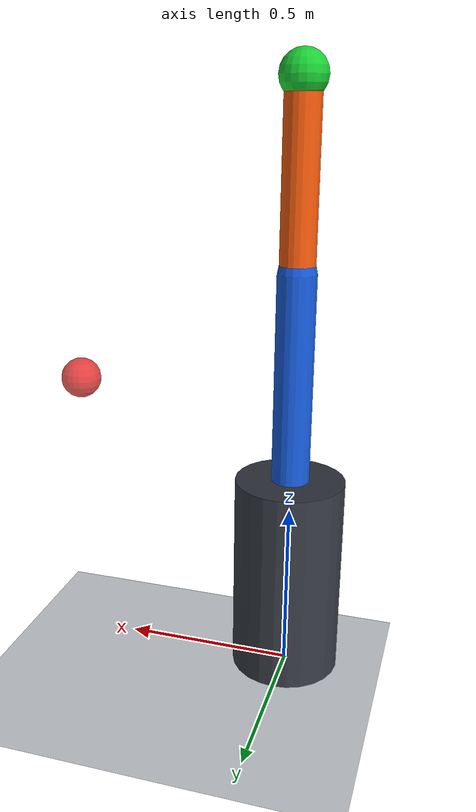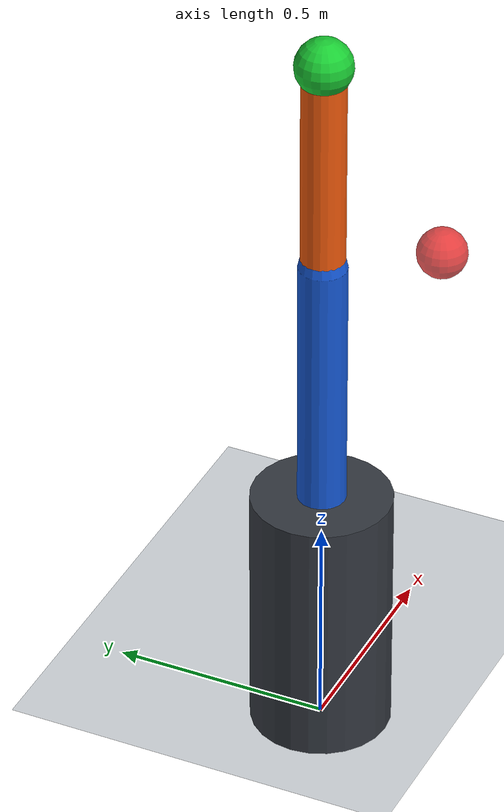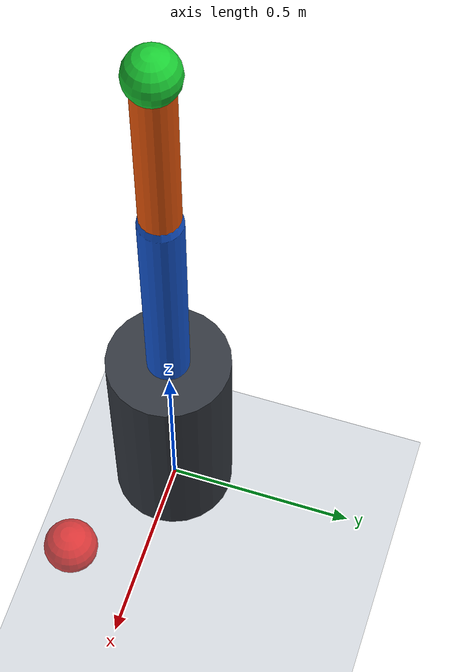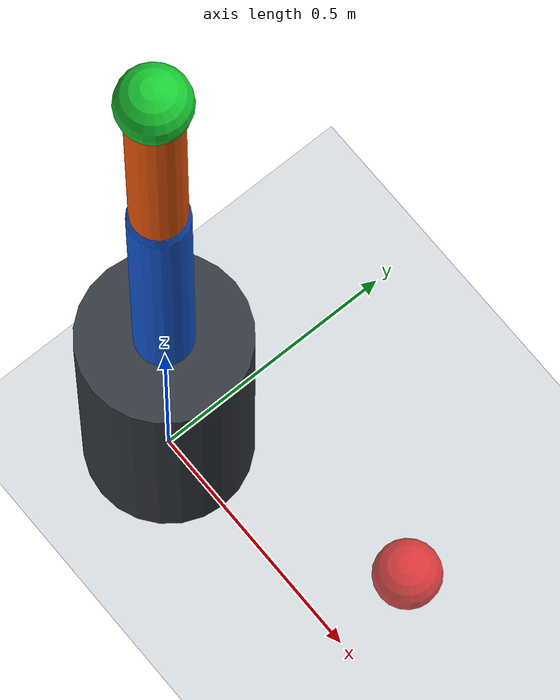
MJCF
<mujoco model="two_link_planar_arm">
  <compiler angle="radian" autolimits="true"/>
  <option timestep="0.002" gravity="0 0 -9.81" integrator="implicitfast"/>

  <visual>
    <global offwidth="960" offheight="720"/>
    <headlight ambient="0.35 0.35 0.35" diffuse="0.7 0.7 0.7" specular="0.2 0.2 0.2"/>
  </visual>

  <default>
    <joint type="hinge" axis="0 1 0" limited="true" damping="0.2" armature="0.01"/>
    <geom type="capsule" density="300" contype="1" conaffinity="1"/>
    <position ctrllimited="true" forcelimited="true" dampratio="1.0"/>
  </default>

  <worldbody>
    <light name="key_light" pos="1 -2 3" dir="-0.3 0.5 -1"/>
    <camera name="side" pos="2.4 -4.0 1.7" xyaxes="1 0 0 0 0.25 1"/>

    <geom name="floor" type="plane" size="3 3 0.1" rgba="0.82 0.84 0.86 1"/>

    <body name="pedestal" pos="0 0 0">
      <geom name="base" type="cylinder" size="0.16 0.30" pos="0 0 0.30"
            rgba="0.20 0.22 0.25 1" contype="0" conaffinity="0"/>

      <body name="link1" pos="0 0 0.60">
        <joint name="shoulder" range="-2.8 2.8"/>
        <geom name="link1_geom" fromto="0 0 0 0 0 0.60" size="0.055"
              rgba="0.08 0.35 0.85 1"/>

        <body name="link2" pos="0 0 0.60">
          <joint name="elbow" range="-2.8 2.8"/>
          <geom name="link2_geom" fromto="0 0 0 0 0 0.50" size="0.05"
                rgba="0.95 0.35 0.04 1"/>

          <site name="end_effector" pos="0 0 0.50" type="sphere" size="0.065"
                rgba="0.10 0.80 0.20 1"/>
        </body>
      </body>
    </body>

    <site name="target" pos="0.65 0 0.85" type="sphere" size="0.06"
          rgba="0.90 0.05 0.05 0.75"/>
  </worldbody>

  <actuator>
    <position name="shoulder_motor" joint="shoulder" kp="120"
              ctrlrange="-2.8 2.8" forcerange="-80 80"/>
    <position name="elbow_motor" joint="elbow" kp="90"
              ctrlrange="-2.8 2.8" forcerange="-50 50"/>
  </actuator>

  <sensor>
    <jointpos name="shoulder_position" joint="shoulder"/>
    <jointpos name="elbow_position" joint="elbow"/>
    <jointvel name="shoulder_velocity" joint="shoulder"/>
    <jointvel name="elbow_velocity" joint="elbow"/>
    <actuatorfrc name="shoulder_actuator_force" actuator="shoulder_motor"/>
    <actuatorfrc name="elbow_actuator_force" actuator="elbow_motor"/>
    <framepos name="end_effector_position" objtype="site" objname="end_effector"/>
  </sensor>

  <keyframe>
    <key name="bent" qpos="-0.75 1.45" ctrl="-0.75 1.45"/>
  </keyframe>
</mujoco>
